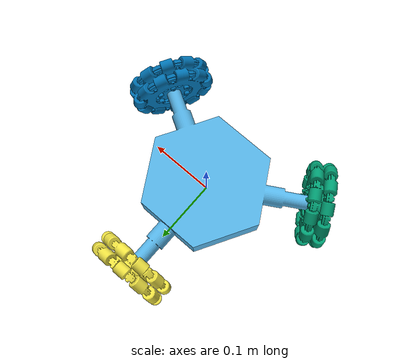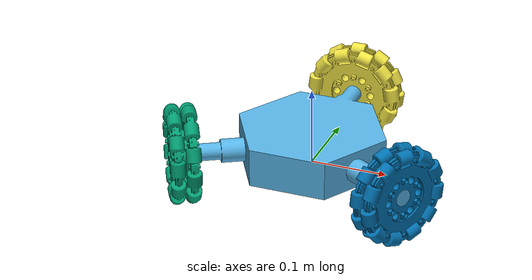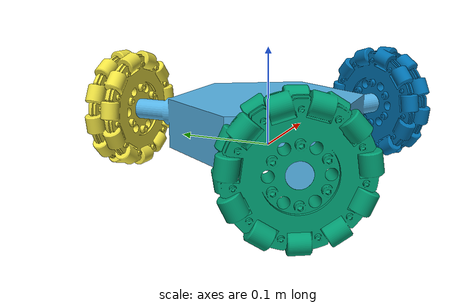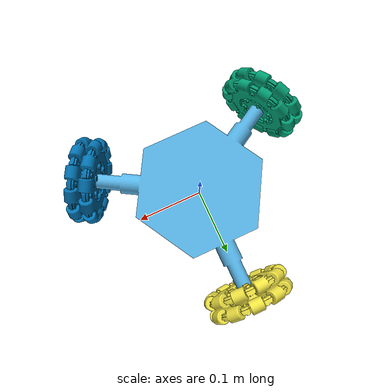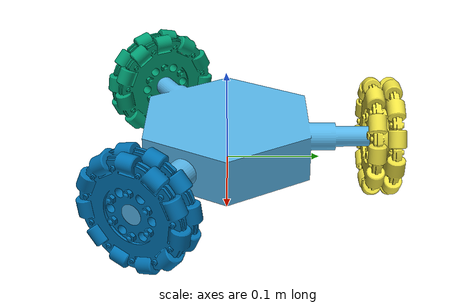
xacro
<?xml version="1.0"?>
<robot name="mobile_robot" xmlns:xacro="http://www.ros.org/wiki/xacro">

  <!-- DUMMY ROOT -->
  <link name="base_link"/>

  <!-- ================= BASE ================= -->
  <link name="mobile_base">
        <inertial>
            <origin xyz="-8.800385241493517e-06 -5.080760325728716e-06 0.025" rpy="0.0 0.0 0.0" />
            <mass value="11.23397207252023" />
            <inertia ixx="0.03188466207652726" iyy="0.03188466206687757" izz="0.059431708806084234" ixy="-2.7855700399249703e-12" iyz="2.85555982343106e-18" ixz="2.8557715816678736e-18" />
        </inertial>

        <visual name="mobile_base_visual">
            <origin xyz="0.0 0.0 0.0" rpy="0.0 0.0 0.0" />
            <geometry>
                <mesh filename="package://mobile_robot/meshes/mobile_base.stl"
                scale="0.001 0.001 0.001" />
            </geometry>
        </visual>

        <collision name="mobile_base_collision">
            <origin xyz="0.0 0.0 0.0" rpy="0.0 0.0 0.0" />
            <geometry>
                <mesh filename="package://mobile_robot/meshes/mobile_base.stl"
                scale="0.001 0.001 0.001" />
            </geometry>
        </collision>

    </link>

    <!-- ================= WHEELS ================= -->
    <link name="Omni_wheel_single_part_1">
        <inertial>
            <origin xyz="2.667996426453101e-08 -2.100347451516882e-11 -0.011519236672568454" rpy="0.0 5.551115123125783e-17 0.0" />
            <mass value="1.9863292429901338" />
            <inertia ixx="0.0023009978909790713" iyy="0.0023010049853970926" izz="0.004188533048600424" ixy="-2.391454010736239e-17" iyz="1.949365611851438e-09" ixz="-1.1175897447063265e-12" />
        </inertial>

        <visual name="Omni_wheel_single_part_1_visual">
            <origin xyz="-2.5250001280952006e-08 0.01803143692017 -0.7384857201327312" rpy="1.5707963267948966 1.5707963267948966 0" />
            <geometry>
                <mesh filename="package://mobile_robot/meshes/Omni_wheel_single_part_1.stl" scale="0.001 0.001 0.001" />
            </geometry>
        </visual>

        <collision name="Omni_wheel_single_part_1_collision">
            <geometry>
                <cylinder radius="0.06" length="0.03"/>
            </geometry>
        </collision>

    </link>
    <link name="Omni_wheel_single_part_2">
        <inertial>
            <origin xyz="-2.965171094528908e-08 -2.0973471848151347e-11 -0.011480766058606663" rpy="0.0 -0.0 0.0" />
            <mass value="1.9863292429901338" />
            <inertia ixx="0.002300997890979005" iyy="0.002301004985396954" izz="0.004188533048600364" ixy="2.040714128172423e-17" iyz="-1.9493656151087224e-09" ixz="-1.1176083781606167e-12" />
        </inertial>

        <visual name="Omni_wheel_single_part_2_visual">
            <origin xyz="2.2278254551236784e-08 0.0180314369202 0.7154857174015561" rpy="1.5707963267948968 -1.5707963267948966 0" />
            <geometry>
                <mesh filename="package://mobile_robot/meshes/Omni_wheel_single_part_2.stl" scale="0.001 0.001 0.001" />
            </geometry>
        </visual>

        <collision name="Omni_wheel_single_part_2_collision">
            <geometry>
                <cylinder radius="0.06" length="0.03"/>
            </geometry>
        </collision>

    </link>
    <link name="Omni_wheel_single_part_3">
        <inertial>
            <origin xyz="-2.6421815952912874e-08 -2.0973471848151347e-11 -0.01148076871158981" rpy="0.0 -5.551115123125784e-17 0.0" />
            <mass value="1.9863292429901338" />
            <inertia ixx="0.002300997890978946" iyy="0.002301004985397072" izz="0.00418853304860031" ixy="2.2030600796904107e-17" iyz="-1.9493656133682033e-09" ixz="-1.1176717103905665e-12" />
        </inertial>

        <visual name="Omni_wheel_single_part_3_visual">
            <origin xyz="2.550814952151587e-08 0.0180314369202 0.7154857147485728" rpy="1.5707963267948968 -1.5707963267948966 0" />
            <geometry>
                <mesh filename="package://mobile_robot/meshes/Omni_wheel_single_part_3.stl" scale="0.001 0.001 0.001" />
            </geometry>
        </visual>

        <collision name="Omni_wheel_single_part_3_collision">

            <geometry>
                <cylinder radius="0.06" length="0.03"/>
            </geometry>
        </collision>

    </link>

    <!-- ================= JOINTS ================= -->
    <joint name="base_link_to_mobile_base" type="fixed">
      <parent link="base_link"/>
      <child link="mobile_base"/>
    </joint>

    <joint name="mobile_base_Revolute-1" type="continuous">
        <origin xyz="-8.8e-06 0.17659745999999998 0.025" rpy="-1.5707963267948966 -0.0 0.0" />
        <parent link="mobile_base" />
        <child link="Omni_wheel_single_part_2" />
        <axis xyz="0.0 0.0 1.0" />
    </joint>

    <joint name="mobile_base_Revolute-2" type="continuous">
        <origin xyz="0.15293349 -0.08830634999999999 0.025" rpy="-1.5707963267948966 -0.0 -2.0943951023931953" />
        <parent link="mobile_base" />
        <child link="Omni_wheel_single_part_3" />
        <axis xyz="2.018922195534678e-07 0.0 0.9999996503124186" />
    </joint>

    <joint name="mobile_base_Revolute-3" type="continuous">
        <origin xyz="-0.15295109 -0.08830634999999999 0.025" rpy="-1.5707963267948966 -0.0 2.094395102393196" />
        <parent link="mobile_base" />
        <child link="Omni_wheel_single_part_1" />
        <axis xyz="-2.0189221860977824e-07 -0.0 0.9999996503124187" />
    </joint>

  <gazebo reference="Omni_wheel_single_part_1">
      <mu value="0.5"/>
      <mu2 value="0.01"/>
      <kp value="2000000.0" />
      <kd value="1000.0" />
      <minDepth value="0.0"/>
  </gazebo>

  <gazebo reference="Omni_wheel_single_part_2">
      <mu value="0.5"/>
      <mu2 value="0.01"/>
      <kp value="2000000.0" />
      <kd value="1000.0" />
      <minDepth value="0.0"/>
  </gazebo>

  <gazebo reference="Omni_wheel_single_part_3">
      <mu value="0.5"/>
      <mu2 value="0.01"/>
      <kp value="2000000.0" />
      <kd value="1000.0" />
      <minDepth value="0.0"/>
  </gazebo>

</robot>

<?xml version="1.0"?>
<robot name="mobile_robot" xmlns:xacro="http://www.ros.org/wiki/xacro">

  <link name="base_link"/>

  <link name="mobile_base">
    <inertial>
      <origin xyz="0 0 0.025" rpy="0 0 0" />
      <mass value="11.23"/>
      <inertia ixx="0.031" iyy="0.031" izz="0.059" ixy="0" iyz="0" ixz="0" />
    </inertial>

    <visual>
      <origin xyz="0 0 0" rpy="0 0 0" />
      <geometry>
        <mesh filename="package://mobile_robot/meshes/mobile_base.stl" scale="0.001 0.001 0.001" />
      </geometry>
    </visual>

    <collision>
      <origin xyz="0 0 0.025" rpy="0 0 0" />
      <geometry>
        <cylinder radius="0.13" length="0.05"/>
      </geometry>
    </collision>
  </link>

  <joint name="base_link_to_mobile_base" type="fixed">
    <parent link="base_link"/>
    <child link="mobile_base"/>
    <origin xyz="0 0 0.035" rpy="0 0 0"/>
  </joint>

  <xacro:macro name="omni_wheel" params="prefix joint_name joint_xyz joint_rpy">
    <link name="Omni_wheel_single_part_${prefix}">
      <inertial>
        <origin xyz="0 0 0" rpy="0 0 0" />
        <mass value="1.98" />
        <inertia ixx="0.0023" iyy="0.0023" izz="0.0041" ixy="0" iyz="0" ixz="0" />
      </inertial>
      <visual>
        <geometry><cylinder radius="0.06" length="0.03"/></geometry>
      </visual>
      <collision>
        <geometry><cylinder radius="0.06" length="0.03"/></geometry>
      </collision>
    </link>

    <joint name="${joint_name}" type="continuous">
      <origin xyz="${joint_xyz}" rpy="${joint_rpy}"/>
      <parent link="mobile_base"/>
      <child link="Omni_wheel_single_part_${prefix}"/>
      <axis xyz="0 0 1"/>
    </joint>

    <gazebo reference="Omni_wheel_single_part_${prefix}">
      <mu1 value="0.5"/>
      <mu2 value="0.01"/>
      <fdir1 value="1 0 0"/>
      <kp value="2000000.0"/>
      <kd value="1000.0"/>
      <minDepth value="0.0"/>
    </gazebo>
  </xacro:macro>

  <xacro:omni_wheel prefix="2" joint_name="mobile_base_Revolute-1" joint_xyz="0.0 0.1766 0.025" joint_rpy="-1.5708 0 0"/>

  <xacro:omni_wheel prefix="3" joint_name="mobile_base_Revolute-2" joint_xyz="0.15294 -0.0883 0.025" joint_rpy="-1.5708 0 -2.0944"/>

  <xacro:omni_wheel prefix="1" joint_name="mobile_base_Revolute-3" joint_xyz="-0.15294 -0.0883 0.025" joint_rpy="-1.5708 0 2.0944"/>

</robot>
